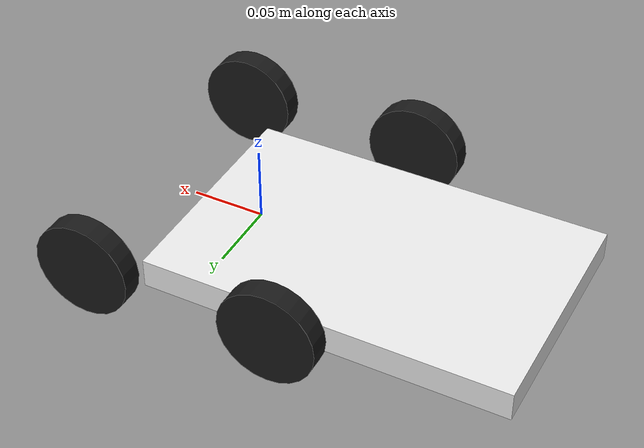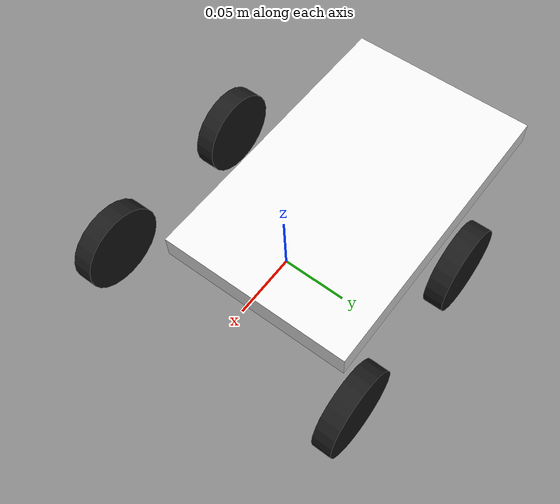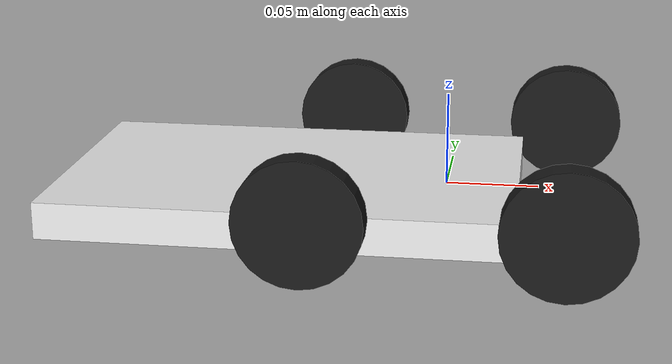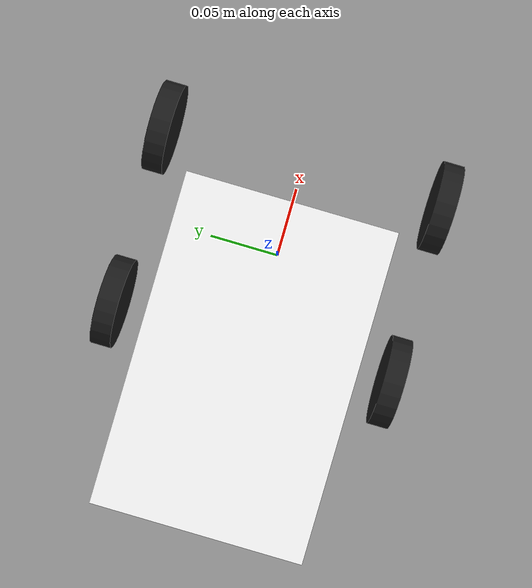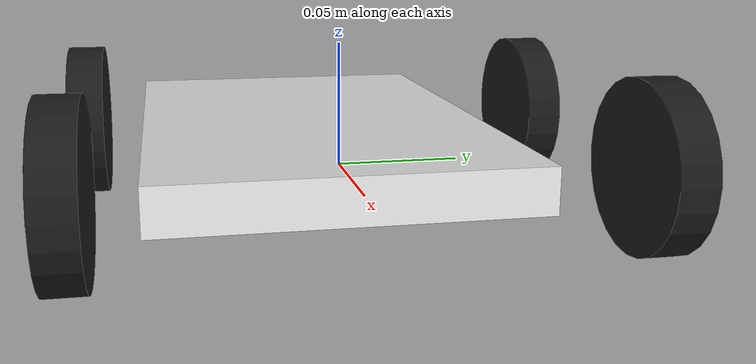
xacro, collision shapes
<?xml version="1.0" ?>
<!-- Generated using onshape-to-robot -->
<!-- Onshape https://cad.onshape.com/documents/58d69eaf54d5097cb2ee2932/w/94ca09f7b1264f3339bd84c4/e/3159eab8c0fb4f293d9f6567 -->
<robot name="simplebot2" xmlns:xacro="http://www.ros.org/wiki/xacro">
  <link name="base_footprint"/>

  <joint name="base_footprint_joint" type="fixed">
    <parent link="base_footprint"/>
    <child link="base_link"/>
    <origin xyz="0 0 0" rpy="0 0 0"/>
  </joint>
  <xacro:include filename="$(find simplebot_description)/urdf/wheel.xacro"/>
  <!-- Link base_link -->
  <link name="base_link">
    <inertial>
      <origin xyz="-3.23026e-10 4.0693e-18 0.0211091" rpy="0 0 0"/>
      <mass value="0.426296"/>
      <inertia ixx="0.00184221" ixy="9.36048e-11" ixz="-1.22606e-12" iyy="0.00190478" iyz="2.8119e-08" izz="0.00332037"/>
    </inertial>

        <!-- Part base_link -->
    <visual name="chassis_plate">
      <origin xyz="-0.085 -6.93889e-18 -0.005" rpy="0 -2.31296e-16 -1.5708"/>
      <geometry>
        <mesh filename="file://$(find simplebot_description)/meshes/simplebot/base_link.stl"/>
      </geometry>
      <material name="base_link_material">
        <color rgba="0.917647 0.917647 0.917647 1"/>
      </material>
    </visual>
    <collision>
      <origin xyz="-0.085 0 -0.005" rpy="0 0 0"/>
      <geometry>
        <box size="0.25 0.16 0.02"/>
      </geometry>
    </collision>

    <!-- Part frame3 -->
    <visual name="frame3">
      <origin xyz="-0.085 2.42861e-17 -0.005" rpy="0 -0 -1.5708"/>
      <geometry>
        <mesh filename="file://$(find simplebot_description)/meshes/simplebot/frame3.stl"/>
      </geometry>
      <material name="frame3_material">
        <color rgba="0.615686 0.811765 0.929412 1"/>
      </material>
    </visual>

    <!-- Part side_bracket_right -->
    <visual name="side_bracket_right">
      <origin xyz="-0.085 1.04083e-17 -0.005" rpy="0 -0 -1.5708"/>
      <geometry>
        <mesh filename="file://$(find simplebot_description)/meshes/simplebot/side_bracket_right.stl"/>
      </geometry>
      <material name="side_bracket_right_material">
        <color rgba="0.647059 0.647059 0.647059 1"/>
      </material>
    </visual>

    <!-- Part frame2 -->
    <visual name="frame2">
      <origin xyz="-0.085 1.38778e-17 -0.005" rpy="0 -0 -1.5708"/>
      <geometry>
        <mesh filename="file://$(find simplebot_description)/meshes/simplebot/frame2.stl"/>
      </geometry>
      <material name="frame2_material">
        <color rgba="0.615686 0.811765 0.929412 1"/>
      </material>
    </visual>

    <!-- Part part_33 -->
    <visual name="part_33">
      <origin xyz="-0.085 2.42861e-17 -0.005" rpy="0 -0 -1.5708"/>
      <geometry>
        <mesh filename="file://$(find simplebot_description)/meshes/simplebot/part_33.stl"/>
      </geometry>
      <material name="part_33_material">
        <color rgba="0.980392 0.713725 0.00392157 1"/>
      </material>
    </visual>

    <!-- Part motor_bracket_front_right -->
    <visual name="motor_bracket_front_right">
      <origin xyz="-0.085 2.77556e-17 -0.005" rpy="0 -0 -1.5708"/>
      <geometry>
        <mesh filename="file://$(find simplebot_description)/meshes/simplebot/motor_bracket_front_right.stl"/>
      </geometry>
      <material name="motor_bracket_front_right_material">
        <color rgba="0.647059 0.647059 0.647059 1"/>
      </material>
    </visual>

    <!-- Part motor_bracket_front_left -->
    <visual name="motor_bracket_front_left">
      <origin xyz="-0.085 2.77556e-17 -0.005" rpy="0 -0 -1.5708"/>
      <geometry>
        <mesh filename="file://$(find simplebot_description)/meshes/simplebot/motor_bracket_front_left.stl"/>
      </geometry>
      <material name="motor_bracket_front_left_material">
        <color rgba="0.647059 0.647059 0.647059 1"/>
      </material>
    </visual>

    <!-- Part frame4 -->
    <visual name="frame4">
      <origin xyz="-0.085 2.1684e-17 -0.005" rpy="0 -0 -1.5708"/>
      <geometry>
        <mesh filename="file://$(find simplebot_description)/meshes/simplebot/frame4.stl"/>
      </geometry>
      <material name="frame4_material">
        <color rgba="0.615686 0.811765 0.929412 1"/>
      </material>
    </visual>

    <!-- Part motor_bracket_rear_left -->
    <visual name="motor_bracket_rear_left">
      <origin xyz="-0.085 1.04083e-17 -0.005" rpy="0 -0 -1.5708"/>
      <geometry>
        <mesh filename="file://$(find simplebot_description)/meshes/simplebot/motor_bracket_rear_left.stl"/>
      </geometry>
      <material name="motor_bracket_rear_left_material">
        <color rgba="0.647059 0.647059 0.647059 1"/>
      </material>
    </visual>

    <!-- Part part_22 -->
    <visual name="part_22">
      <origin xyz="-0.085 2.42861e-17 -0.005" rpy="0 -0 -1.5708"/>
      <geometry>
        <mesh filename="file://$(find simplebot_description)/meshes/simplebot/part_22.stl"/>
      </geometry>
      <material name="part_22_material">
        <color rgba="0.917647 0.917647 0.917647 1"/>
      </material>
    </visual>

    <!-- Part motor_bracket_rear_right -->
    <visual name="motor_bracket_rear_right">
      <origin xyz="-0.085 1.04083e-17 -0.005" rpy="0 -0 -1.5708"/>
      <geometry>
        <mesh filename="file://$(find simplebot_description)/meshes/simplebot/motor_bracket_rear_right.stl"/>
      </geometry>
      <material name="motor_bracket_rear_right_material">
        <color rgba="0.647059 0.647059 0.647059 1"/>
      </material>
    </visual>

    <!-- Part frame1 -->
    <visual name="frame1">
      <origin xyz="-0.085 1.04083e-17 -0.005" rpy="0 -0 -1.5708"/>
      <geometry>
        <mesh filename="file://$(find simplebot_description)/meshes/simplebot/frame1.stl"/>
      </geometry>
      <material name="frame1_material">
        <color rgba="0.615686 0.811765 0.929412 1"/>
      </material>
    </visual>

    <!-- Part side_bracket_left -->
    <visual name="side_bracket_left">
      <origin xyz="-0.085 1.04083e-17 -0.005" rpy="0 -0 -1.5708"/>
      <geometry>
        <mesh filename="file://$(find simplebot_description)/meshes/simplebot/side_bracket_left.stl"/>
      </geometry>
      <material name="side_bracket_left_material">
        <color rgba="0.647059 0.647059 0.647059 1"/>
      </material>
    </visual>

    <!-- Part motor_front_right -->
    <visual name="motor_front_right">
      <origin xyz="0.0475 0 0.1625" rpy="-1.5708 -0 -1.5708"/>
      <geometry>
        <mesh filename="file://$(find simplebot_description)/meshes/simplebot/motor_front_right.stl"/>
      </geometry>
      <material name="motor_front_right_material">
        <color rgba="0.8 0.807843 0.8 1"/>
      </material>
    </visual>

    <!-- Part motor_rear_left -->
    <visual name="motor_rear_left">
      <origin xyz="-0.0825 1.38778e-17 0.0325" rpy="-1.5708 -0 -1.5708"/>
      <geometry>
        <mesh filename="file://$(find simplebot_description)/meshes/simplebot/motor_rear_left.stl"/>
      </geometry>
      <material name="motor_rear_left_material">
        <color rgba="0.8 0.807843 0.8 1"/>
      </material>
    </visual>

    <!-- Part motor_rear_right -->
    <visual name="motor_rear_right">
      <origin xyz="-0.0475 1.04083e-17 -0.0075" rpy="1.5708 -0 -1.5708"/>
      <geometry>
        <mesh filename="file://$(find simplebot_description)/meshes/simplebot/motor_rear_right.stl"/>
      </geometry>
      <material name="motor_rear_right_material">
        <color rgba="0.8 0.807843 0.8 1"/>
      </material>
    </visual>

    <!-- Part part_27 -->
    <visual name="part_27">
      <origin xyz="-0.085 1.04083e-17 -0.00744" rpy="0 -0 -1.5708"/>
      <geometry>
        <mesh filename="file://$(find simplebot_description)/meshes/simplebot/part_27.stl"/>
      </geometry>
      <material name="part_27_material">
        <color rgba="0.980392 0.713725 0.00392157 1"/>
      </material>
    </visual>

    <!-- Part motor_front_left -->
    <visual name="motor_front_left">
      <origin xyz="0.0825 -6.93889e-18 -0.1375" rpy="1.5708 -0 -1.5708"/>
      <geometry>
        <mesh filename="file://$(find simplebot_description)/meshes/simplebot/motor_front_left.stl"/>
      </geometry>
      <material name="motor_front_left_material">
        <color rgba="0.8 0.807843 0.8 1"/>
      </material>
    </visual>

    <visual>
      <origin xyz="0.111 0 -0.005" rpy="0 0 1.5708"/>
      <geometry>
        <mesh filename="file://$(find simplebot_description)/meshes/simplebot/rplidar_c1.stl"/>
      </geometry>
      <material name="rplidar_c1_material">
        <color rgba="0.647059 0.647059 0.647059 1"/>
      </material>
    </visual>

  </link>

<xacro:wheel name="wheel_front_left" color="0.1 0.1 0.1 1"/>
  <joint name="joint_front_left" type="continuous">
    <parent link="base_link"/>
    <child link="wheel_front_left"/>
    <origin xyz="0.065 0.103008 0.010" rpy="0 0 0"/>
    <axis xyz="0 1 0"/>
    <limit effort="5.0" velocity="20.0"/>
  </joint>

  <xacro:wheel name="wheel_front_right" color="0.1 0.1 0.1 1"/>
  <joint name="joint_front_right" type="continuous">
    <parent link="base_link"/>
    <child link="wheel_front_right"/>
    <origin xyz="0.065 -0.103008 0.010" rpy="0 0 0"/>
    <axis xyz="0 1 0"/>
    <limit effort="5.0" velocity="20.0"/>
  </joint>

  <xacro:wheel name="wheel_rear_left" color="0.1 0.1 0.1 1"/>
  <joint name="joint_rear_left" type="continuous">
    <parent link="base_link"/>
    <child link="wheel_rear_left"/>
    <origin xyz="-0.065 0.103008 0.010" rpy="0 0 0"/>
    <axis xyz="0 1 0"/>
    <limit effort="5.0" velocity="20.0"/>
  </joint>

  <xacro:wheel name="wheel_rear_right" color="0.1 0.1 0.1 1"/>
  <joint name="joint_rear_right" type="continuous">
    <parent link="base_link"/>
    <child link="wheel_rear_right"/>
    <origin xyz="-0.065 -0.103008 0.010" rpy="0 0 0"/>
    <axis xyz="0 1 0"/>
    <limit effort="5.0" velocity="20.0"/>
  </joint>

  <gazebo>
    <plugin
    filename="gz-sim-diff-drive-system"
    name="gz::sim::systems::DiffDrive">

      <!-- LEFT wheels -->
      <left_joint>joint_front_left</left_joint>
      <left_joint>joint_rear_left</left_joint>

      <!-- RIGHT wheels -->
      <right_joint>joint_front_right</right_joint>
      <right_joint>joint_rear_right</right_joint>

      <wheel_separation>0.206</wheel_separation>
      <wheelbase>0.13</wheelbase>
      <wheel_radius>0.03</wheel_radius>

      <topic>/cmd_vel</topic>
      <odom_topic>/odom</odom_topic>
      <frame_id>odom</frame_id>
      <child_frame_id>base_link</child_frame_id>

      <min_acceleration>-10</min_acceleration>
      <max_acceleration>10</max_acceleration>
      <min_velocity>-10</min_velocity>
      <max_velocity>10</max_velocity>
    </plugin>

    <plugin
      filename="gz-sim-joint-state-publisher-system"
      name="gz::sim::systems::JointStatePublisher">
      <topic>/encoder_data_gz</topic> <joint_name>joint_front_left</joint_name>
      <joint_name>joint_front_right</joint_name>
      <joint_name>joint_rear_left</joint_name>
      <joint_name>joint_rear_right</joint_name>
    </plugin>
  </gazebo>
</robot>

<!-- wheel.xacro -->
<robot xmlns:xacro="http://www.ros.org/wiki/xacro">
  <xacro:macro name="wheel" params="name color">
    <link name="${name}">
      <inertial>
        <mass value="0.08"/>
        <origin xyz="0 0 0"/>
        <inertia ixx="0.000045" iyy="0.000045" izz="0.00009" ixy="0" ixz="0" iyz="0"/>
      </inertial>
      <visual>
        <origin xyz="0 0 0" rpy="-1.5708 0 0"/>
        <geometry>
          <cylinder radius="0.033" length="0.015"/>
        </geometry>
        <material name="${name}_material">
          <color rgba="${color}"/>
        </material>
      </visual>
      <collision>
        <origin xyz="0 0 0" rpy="-1.5708 0 0"/>
        <geometry>
          <cylinder radius="0.033" length="0.015"/>
        </geometry>
      </collision>
    </link>
    <gazebo reference="${name}">
  <surface>
    <friction>
      <ode>
        <mu>1.0</mu>
        <mu2>1.0</mu2>
      </ode>
    </friction>
  </surface>
</gazebo>
  </xacro:macro>
</robot>
